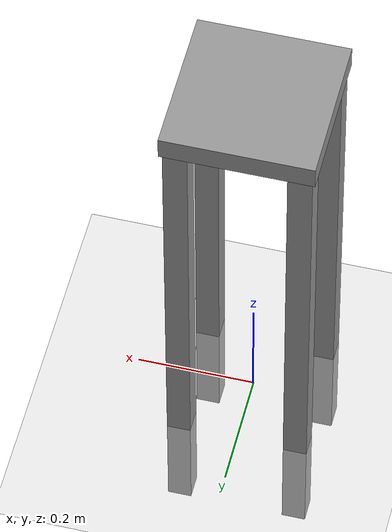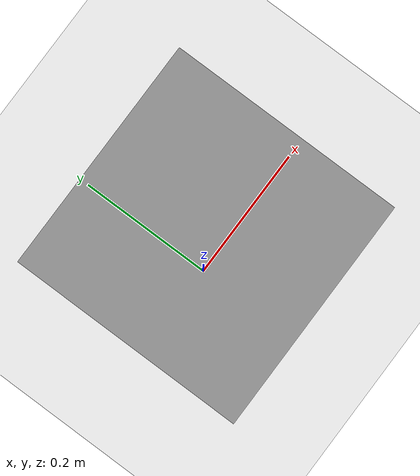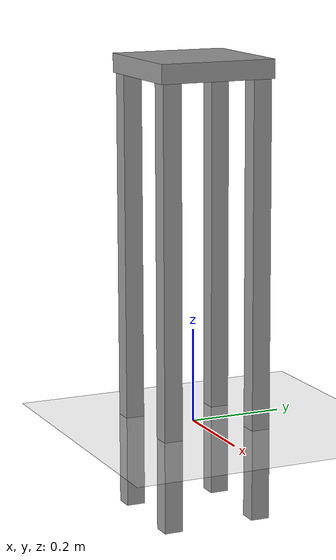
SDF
<sdf version="1.6">
 <world name="default">
  <gravity>0 0 -9.81</gravity>
  <physics name="default_physics" default="0" type="ode">
   <max_step_size>0.001</max_step_size>
   <real_time_factor>1</real_time_factor>
   <real_time_update_rate>1000</real_time_update_rate>
  </physics>
  <scene><ambient>0.4 0.4 0.4 1</ambient><background>0.7 0.7 0.7 1</background><shadows>1</shadows></scene>
  <include><uri>model://sun</uri></include>
  <include><uri>model://ground_plane</uri></include>
  <model name="xarm_base">
   <static>true</static>
   <link name="top_plate">
    <pose>0 0 0.755 0 0 0</pose>
    <collision name="top_plate_collision">
     <geometry><box><size>0.25 0.25 0.04</size></box></geometry>
     <surface><contact><collide_bitmask>0x01</collide_bitmask></contact></surface>
    </collision>
    <visual name="top_plate_visual">
     <geometry><box><size>0.25 0.25 0.04</size></box></geometry>
     <material>
      <script><uri>file://media/materials/scripts/gazebo.material</uri><name>Gazebo/Grey</name></script>
     </material>
    </visual>
   </link>
   <link name="leg1">
    <pose>0.1 0.1 0.285 0 0 0</pose>
    <collision name="leg1_collision"><geometry><box><size>0.04 0.04 0.965</size></box></geometry></collision>
    <visual name="leg1_visual">
     <geometry><box><size>0.04 0.04 0.965</size></box></geometry>
     <material>
      <script><uri>file://media/materials/scripts/gazebo.material</uri><name>Gazebo/Grey</name></script>
     </material>
    </visual>
   </link>
   <link name="leg2">
    <pose>-0.1 0.1 0.285 0 0 0</pose>
    <collision name="leg2_collision"><geometry><box><size>0.04 0.04 0.965</size></box></geometry></collision>
    <visual name="leg2_visual">
     <geometry><box><size>0.04 0.04 0.965</size></box></geometry>
     <material>
      <script><uri>file://media/materials/scripts/gazebo.material</uri><name>Gazebo/Grey</name></script>
     </material>
    </visual>
   </link>
   <link name="leg3">
    <pose>0.1 -0.1 0.285 0 0 0</pose>
    <collision name="leg3_collision"><geometry><box><size>0.04 0.04 0.965</size></box></geometry></collision>
    <visual name="leg3_visual">
     <geometry><box><size>0.04 0.04 0.965</size></box></geometry>
     <material>
      <script><uri>file://media/materials/scripts/gazebo.material</uri><name>Gazebo/Grey</name></script>
     </material>
    </visual>
   </link>
   <link name="leg4">
    <pose>-0.1 -0.1 0.285 0 0 0</pose>
    <collision name="leg4_collision"><geometry><box><size>0.04 0.04 0.965</size></box></geometry></collision>
    <visual name="leg4_visual">
     <geometry><box><size>0.04 0.04 0.965</size></box></geometry>
     <material>
      <script><uri>file://media/materials/scripts/gazebo.material</uri><name>Gazebo/Grey</name></script>
     </material>
    </visual>
   </link>
  </model>
 </world>
</sdf>
